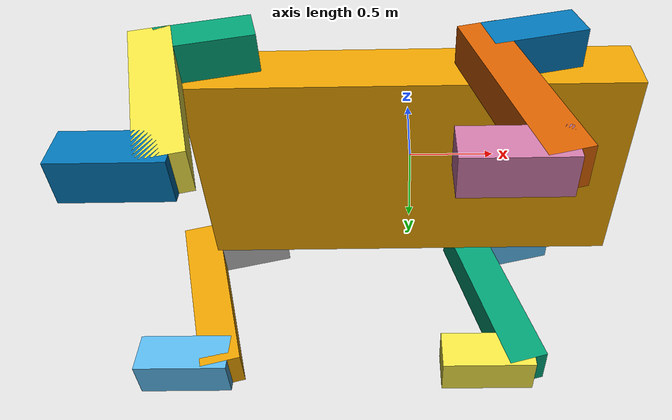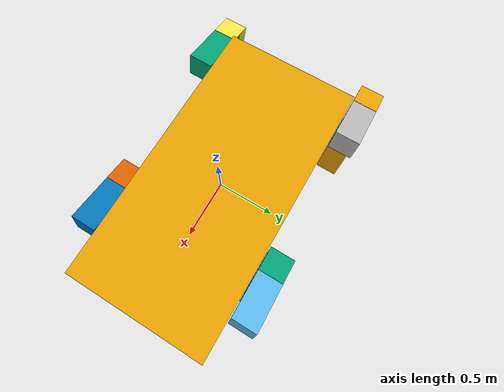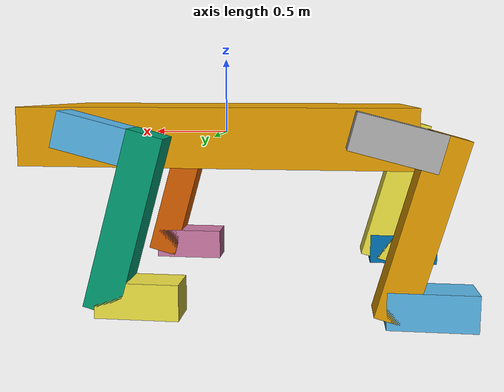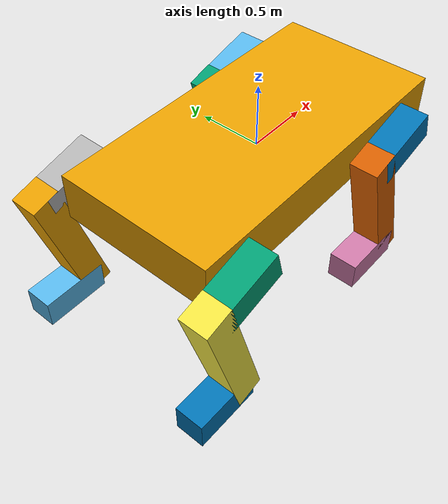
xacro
<?xml version="1.0"?>
<robot xmlns:xacro="http://www.ros.org/wiki/xacro" name="arm">

<xacro:property name="total_weight" value="20" /> <!--KG-->
<xacro:property name="torso_weight" value="${total_weight * 0.5}" />
<xacro:property name="leg_weight" value="${(total_weight - torso_weight) * 0.25}" />

<xacro:property name="torso_length" value="2.5"/>
<xacro:property name="leg_length" value="1.5"/>

<xacro:macro name="cuboid_inertia_tensors" params="weight length" >
    <inertial>
        <origin xyz="0.0 0.0 0.0" rpy="0.0 0.0 0.0"/>
        <mass value="${weight}"/>
        <inertia
        ixx="${(weight/12)*((length*length*.025)+(length*length*0.0225))}" ixy="0.0" ixz="0.0"
        iyy="${(weight/12)*((length*length)+(length*length*0.0225))}" iyz="0.0"
        izz="${(weight/12)*((length*length)+(length*length*0.025))}"/>
    </inertial>
</xacro:macro>

<xacro:macro name="revolve" params="name parent child hi lo axis offset">
    <joint name="${name}" type="revolute">
        <parent link="${parent}"/>
        <child link="${child}"/>
        <limit lower="${lo}" upper="${hi}" effort="20.0" velocity="20.0"/>
        <origin xyz="${offset}"/>
        <axis xyz="${axis}"/>
    </joint>
</xacro:macro>

<xacro:macro name="torso" params="name weight length">
    <link name="${name}">
        <visual>
            <geometry>
                <box size="${length} ${length * 0.5} ${length * 0.15}"/>
            </geometry>
            <origin />
        </visual>
        <collision>
            <geometry>
                <box size="${length} ${length * 0.5} ${length * 0.15}"/>
            </geometry>
            <origin />
        </collision>
        <xacro:cuboid_inertia_tensors weight="${weight}" length="${length}"/>
    </link>
</xacro:macro>

<xacro:macro name="leg" params="name weight length offset">
    <link name="${name}_upper">
        <visual>
            <geometry>
                <box size="${length * 0.35} ${length * 0.15} ${length * 0.15}"/>
            </geometry>
            <origin xyz="-${length * 0.15} 0 0" rpy="0 -.25 0"/>
        </visual>
        <collision>
            <geometry>
                <box size="${length * 0.35} ${length * 0.15} ${length * 0.15}"/>
            </geometry>
            <origin xyz="-${length * 0.15} 0 0" rpy="0 -.25 0"/>
        </collision>
        <xacro:cuboid_inertia_tensors weight="${weight}" length="${length}"/>
    </link>

    <link name="${name}_lower">
        <visual>
            <geometry>
                <box size="${length * 0.75} ${length * 0.15} ${length * 0.15}"/>
            </geometry>
            <origin xyz="0 0 -${length * 0.335} " rpy="0 1.3 0"/>
        </visual>
        <collision>
            <geometry>
                <box size="${length * 0.75} ${length * 0.15} ${length * 0.15}"/>
            </geometry>
            <origin xyz="0 0 -${length * 0.335} " rpy="0 1.3 0"/>
        </collision>
        <xacro:cuboid_inertia_tensors weight="${weight}" length="${length}"/>
    </link>

    <link name="${name}_foot">
        <visual>
            <geometry>
                <box size="${length * 0.35} ${length * 0.15} ${length * 0.15}"/>
            </geometry>
            <origin xyz="-${length * 0.15} 0 0" rpy="0 0 0"/>
        </visual>
        <collision>
            <geometry>
                <box size="${length * 0.35} ${length * 0.15} ${length * 0.15}"/>
            </geometry>
            <origin xyz="-${length * 0.15} 0 0" rpy="0 0 0"/>
        </collision>
        <xacro:cuboid_inertia_tensors weight="${weight}" length="${length}"/>
    </link>

    <xacro:revolve name="${name}_shoulder" parent="base_link" child="${name}_upper" lo="-1.2" hi="1.2" axis="0 1 0" offset="${offset}"/>
    <xacro:revolve name="${name}_knee" parent="${name}_upper" child="${name}_lower" lo="-1.2" hi="1.2" axis="0 1 0" offset="-${length * 0.25} 0 0"/>
    <xacro:revolve name="${name}_ankle" parent="${name}_lower" child="${name}_foot" lo="-1.2" hi="1.2" axis="0 1 0" offset="${length * 0.1} 0 -${length * 0.65}"/>
</xacro:macro>

<xacro:torso name="base_link" weight="${torso_weight}" length="${torso_length}"/>
<xacro:leg name="back_right" weight="${leg_weight}" length="${leg_length}" offset="${torso_length * 0.35} ${torso_length * 0.3} 0"/>
<xacro:leg name="back_left" weight="${leg_weight}" length="${leg_length}" offset="${torso_length * 0.35} -${torso_length * 0.3} 0"/>
<xacro:leg name="front_right" weight="${leg_weight}" length="${leg_length}" offset="-${torso_length * 0.35} ${torso_length * 0.3} 0"/>
<xacro:leg name="front_left" weight="${leg_weight}" length="${leg_length}" offset="-${torso_length * 0.35} -${torso_length * 0.3} 0"/>
</robot>
